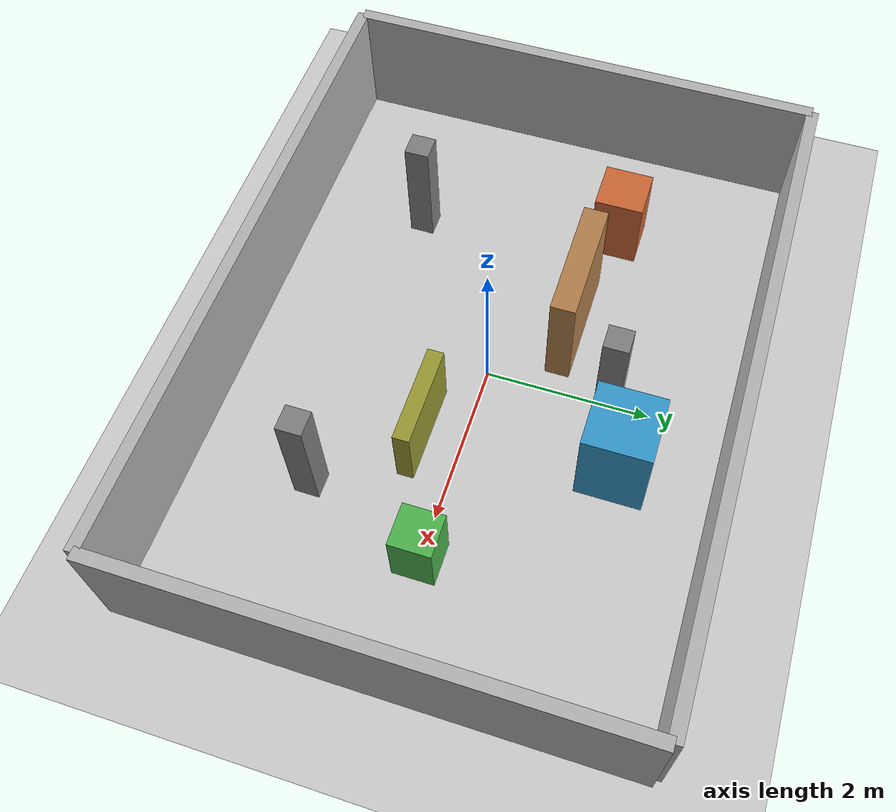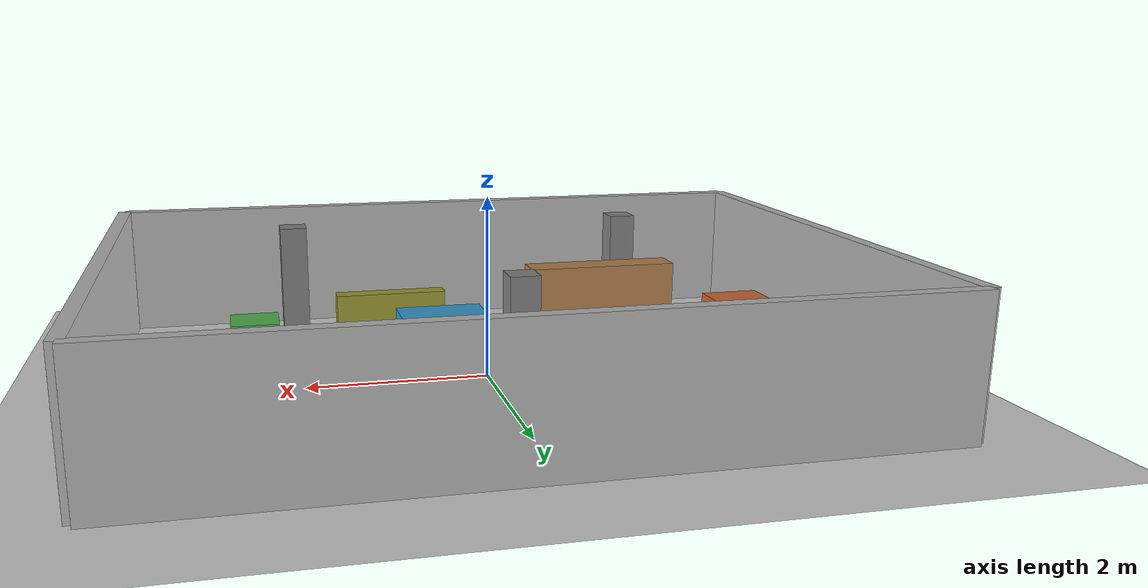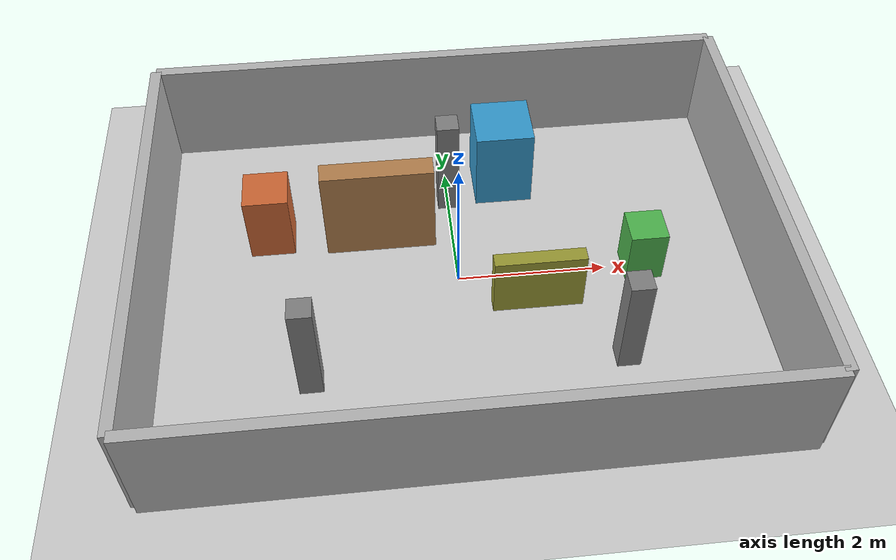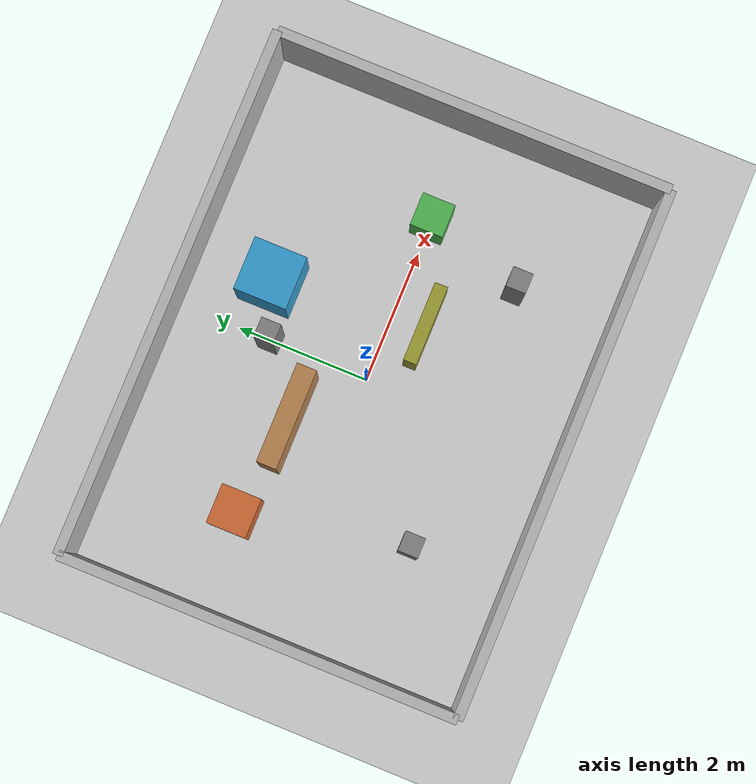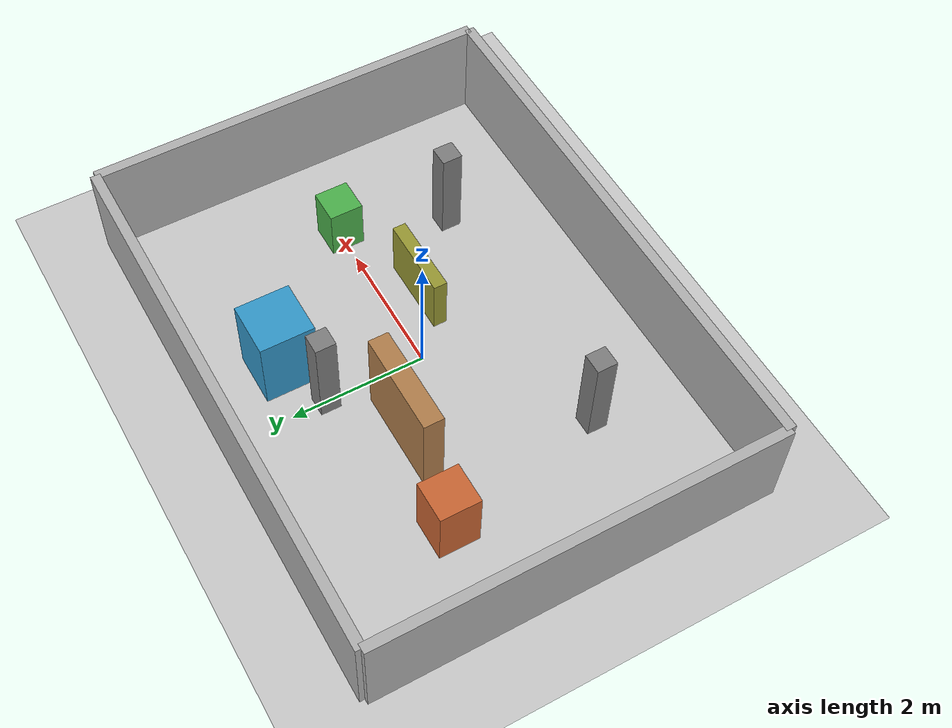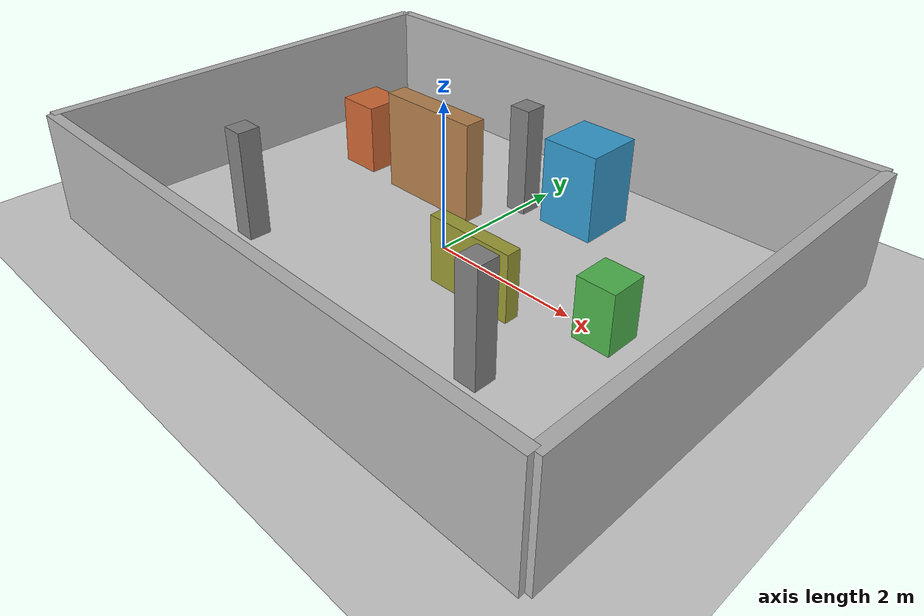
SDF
<?xml version='1.0' encoding='UTF-8'?>
<sdf version="1.6">
  <world name="mowen_world">
    <include>
      <uri>model://sun</uri>
    </include>
    <include>
      <uri>model://ground_plane</uri>
    </include>

    <scene>
      <shadows>false</shadows>
    </scene>

    <physics type="ode">
      <real_time_update_rate>1000.0</real_time_update_rate>
      <max_step_size>0.001</max_step_size>
      <real_time_factor>1</real_time_factor>
      <ode>
        <solver>
          <type>quick</type>
          <iters>150</iters>
          <sor>1.4</sor>
          <use_dynamic_moi_rescaling>1</use_dynamic_moi_rescaling>
        </solver>
        <constraints>
          <cfm>0.00001</cfm>
          <erp>0.2</erp>
          <contact_max_correcting_vel>2000.0</contact_max_correcting_vel>
          <contact_surface_layer>0.01</contact_surface_layer>
        </constraints>
      </ode>
    </physics>

    <model name="wall_bottom">
      <static>true</static>
      <pose>0 -3 0.75 0 0 0</pose>
      <link name="link">
        <collision name="collision">
          <geometry><box><size>8 0.15 1.5</size></box></geometry>
        </collision>
        <visual name="visual">
          <geometry><box><size>8 0.15 1.5</size></box></geometry>
          <material><ambient>0.7 0.7 0.7 1</ambient><diffuse>0.7 0.7 0.7 1</diffuse></material>
        </visual>
      </link>
    </model>
    <model name="wall_top">
      <static>true</static>
      <pose>0 3 0.75 0 0 0</pose>
      <link name="link">
        <collision name="collision">
          <geometry><box><size>8 0.15 1.5</size></box></geometry>
        </collision>
        <visual name="visual">
          <geometry><box><size>8 0.15 1.5</size></box></geometry>
          <material><ambient>0.7 0.7 0.7 1</ambient><diffuse>0.7 0.7 0.7 1</diffuse></material>
        </visual>
      </link>
    </model>
    <model name="wall_left">
      <static>true</static>
      <pose>-4 0 0.75 0 0 0</pose>
      <link name="link">
        <collision name="collision">
          <geometry><box><size>0.15 6 1.5</size></box></geometry>
        </collision>
        <visual name="visual">
          <geometry><box><size>0.15 6 1.5</size></box></geometry>
          <material><ambient>0.7 0.7 0.7 1</ambient><diffuse>0.7 0.7 0.7 1</diffuse></material>
        </visual>
      </link>
    </model>
    <model name="wall_right"><static>true</static><pose>4 0 0.75 0 0 0</pose><link name="link"><collision name="collision"><geometry><box><size>0.15 6 1.5</size></box></geometry></collision><visual name="visual"><geometry><box><size>0.15 6 1.5</size></box></geometry><material><ambient>0.7 0.7 0.7 1</ambient><diffuse>0.7 0.7 0.7 1</diffuse></material></visual></link></model><model name="pillar_a"><static>true</static><pose>-2.0 -1.5 0.75 0 0 0</pose><link name="link"><collision name="collision"><geometry><box><size>0.3 0.3 1.5</size></box></geometry></collision><visual name="visual"><geometry><box><size>0.3 0.3 1.5</size></box></geometry><material><ambient>0.5 0.5 0.5 1</ambient><diffuse>0.5 0.5 0.5 1</diffuse></material></visual></link></model><model name="pillar_b"><static>true</static><pose>2.0 -1.5 0.75 0 0 0</pose><link name="link"><collision name="collision"><geometry><box><size>0.3 0.3 1.5</size></box></geometry></collision><visual name="visual"><geometry><box><size>0.3 0.3 1.5</size></box></geometry><material><ambient>0.5 0.5 0.5 1</ambient><diffuse>0.5 0.5 0.5 1</diffuse></material></visual></link></model><model name="pillar_c"><static>true</static><pose>0.0 1.5 0.75 0 0 0</pose><link name="link"><collision name="collision"><geometry><box><size>0.3 0.3 1.5</size></box></geometry></collision><visual name="visual"><geometry><box><size>0.3 0.3 1.5</size></box></geometry><material><ambient>0.5 0.5 0.5 1</ambient><diffuse>0.5 0.5 0.5 1</diffuse></material></visual></link></model><model name="box_a"><static>true</static><pose>0.8 1.8 0.6 0 0 0</pose><link name="link"><collision name="collision"><geometry><box><size>0.8 0.8 1.2</size></box></geometry></collision><visual name="visual"><geometry><box><size>0.8 0.8 1.2</size></box></geometry><material><ambient>0.2 0.6 0.8 1</ambient><diffuse>0.2 0.6 0.8 1</diffuse></material></visual></link></model><model name="box_b"><static>true</static><pose>-2.5 1.0 0.5 0 0 0</pose><link name="link"><collision name="collision"><geometry><box><size>0.6 0.6 1.0</size></box></geometry></collision><visual name="visual"><geometry><box><size>0.6 0.6 1.0</size></box></geometry><material><ambient>0.8 0.4 0.2 1</ambient><diffuse>0.8 0.4 0.2 1</diffuse></material></visual></link></model><model name="box_c"><static>true</static><pose>2.5 0.0 0.4 0 0 0</pose><link name="link"><collision name="collision"><geometry><box><size>0.5 0.5 0.8</size></box></geometry></collision><visual name="visual"><geometry><box><size>0.5 0.5 0.8</size></box></geometry><material><ambient>0.3 0.7 0.3 1</ambient><diffuse>0.3 0.7 0.3 1</diffuse></material></visual></link></model><model name="shelf"><static>true</static><pose>-1.0 0.8 0.7 0 0 0</pose><link name="link"><collision name="collision"><geometry><box><size>1.5 0.3 1.4</size></box></geometry></collision><visual name="visual"><geometry><box><size>1.5 0.3 1.4</size></box></geometry><material><ambient>0.7 0.5 0.3 1</ambient><diffuse>0.7 0.5 0.3 1</diffuse></material></visual></link></model><model name="barrier"><static>true</static><pose>1.0 -0.5 0.45 0 0 0</pose><link name="link"><collision name="collision"><geometry><box><size>1.2 0.2 0.9</size></box></geometry></collision><visual name="visual"><geometry><box><size>1.2 0.2 0.9</size></box></geometry><material><ambient>0.6 0.6 0.2 1</ambient><diffuse>0.6 0.6 0.2 1</diffuse></material></visual></link></model></world>
</sdf>
